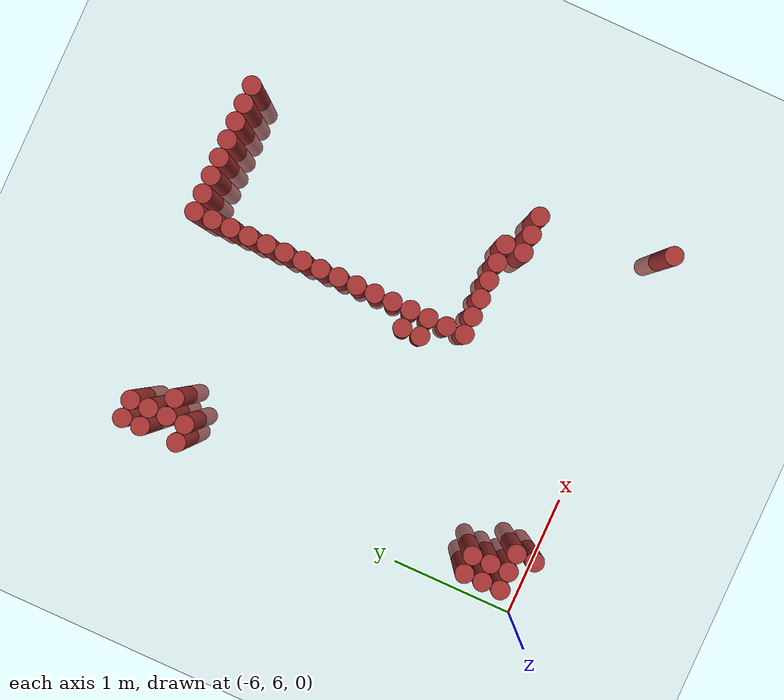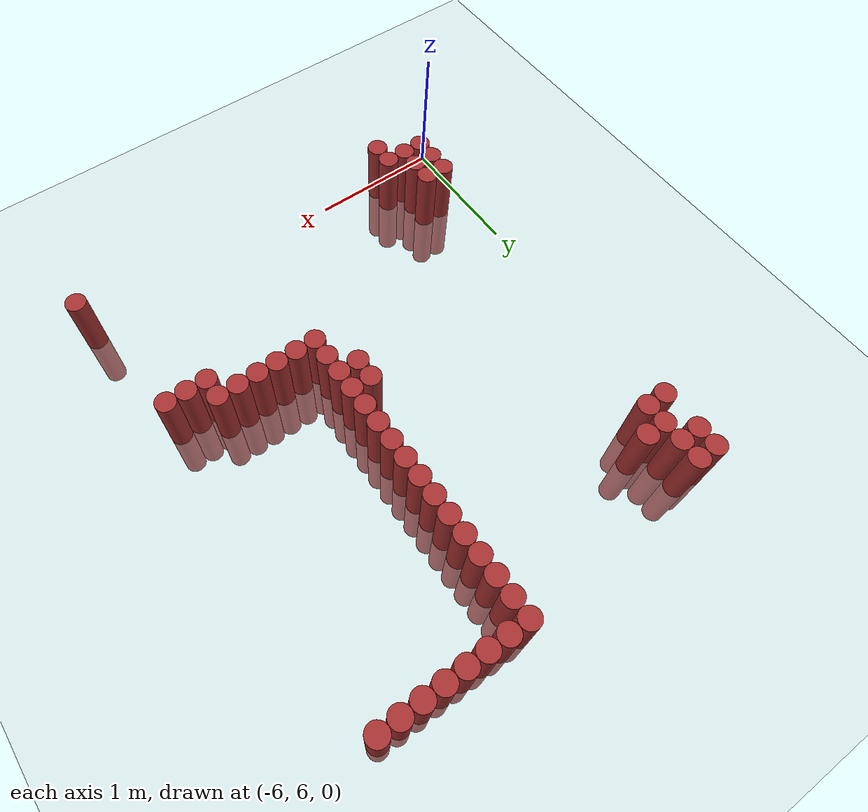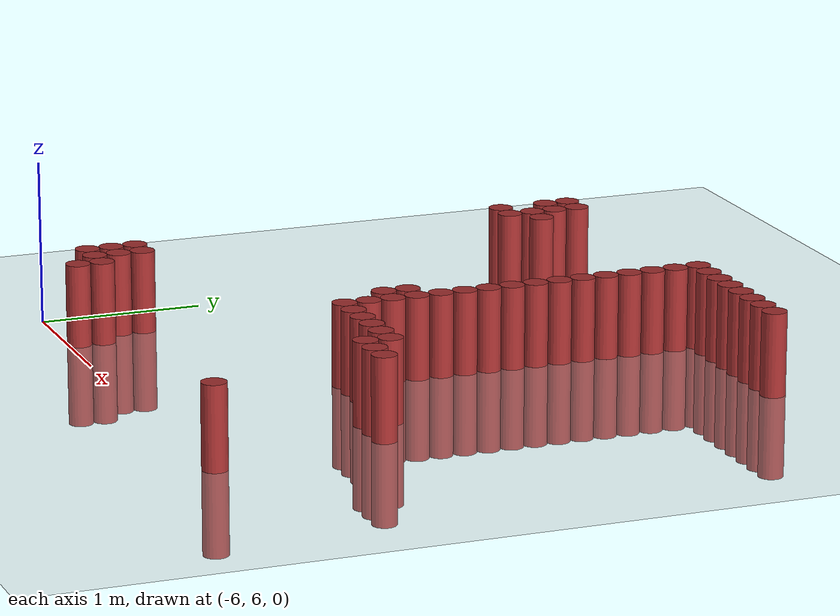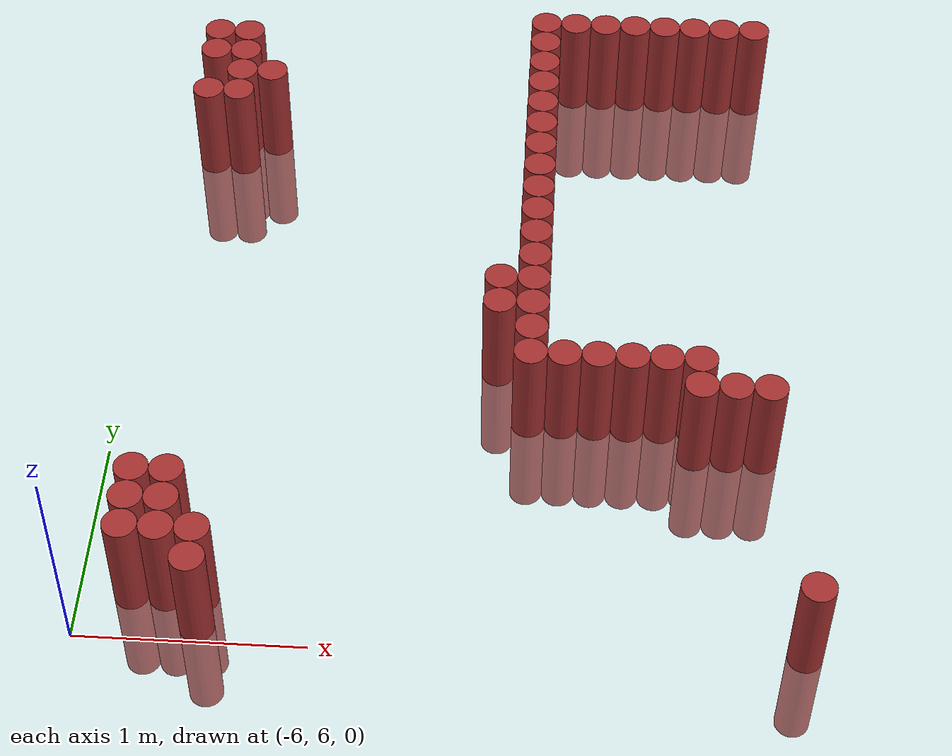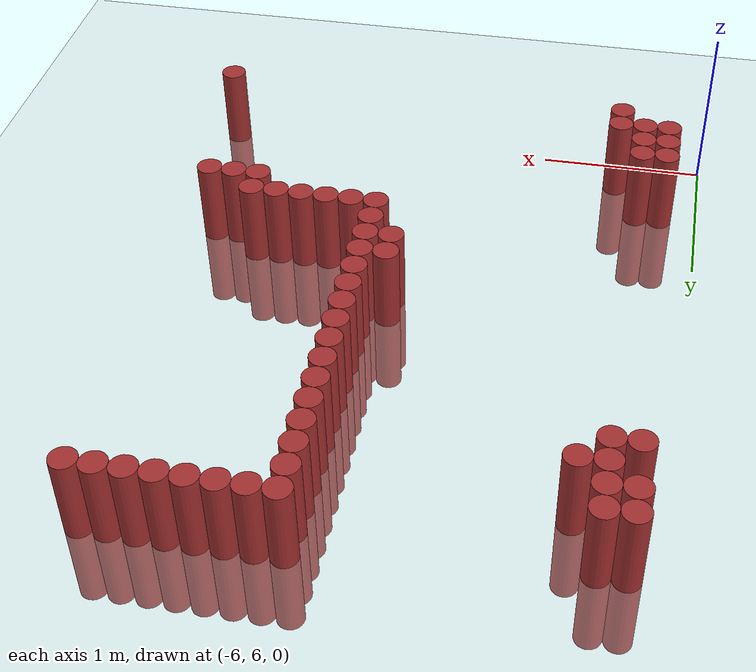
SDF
<sdf version="1.6">
 <world name="default">
  <model name="ground_plane">
   <static>1</static>
   <link name="link">
    <collision name="collision">
     <geometry><plane><normal>0 0 1</normal><size>100 100</size></plane></geometry>
     <surface><friction><ode><mu>100</mu><mu2>50</mu2></ode></friction></surface>
    </collision>
    <visual name="visual">
     <cast_shadows>0</cast_shadows>
     <geometry><plane><normal>0 0 1</normal><size>100 100</size></plane></geometry>
     <material>
      <script><uri>file://media/materials/scripts/gazebo.material</uri><name>Gazebo/Grey</name></script>
     </material>
    </visual>
   </link>
  </model>
  <model name="unit_cylinder_252">
   <static>1</static>
   <pose>-5.775000 6.225000 0.000000 0.000000 0.000000 0.000000</pose>
   <link name="link">
    <inertial>
     <mass>1</mass>
     <inertia><ixx>0.145833</ixx><ixy>0</ixy><ixz>0</ixz><iyy>0.145833</iyy><iyz>0</iyz><izz>0.125</izz></inertia>
    </inertial>
    <collision name="collision">
     <geometry><cylinder><radius>0.075000</radius><length>1</length></cylinder></geometry>
    </collision>
    <visual name="visual">
     <geometry><cylinder><radius>0.075000</radius><length>1</length></cylinder></geometry>
     <material>
      <ambient>0.648000 0.192000 0.192000 1</ambient>
      <diffuse>0.648000 0.192000 0.192000 1</diffuse>
     </material>
     <material>
      <script><name>Gazebo/Grey</name><uri>file://media/materials/scripts/gazebo.material</uri></script>
     </material>
    </visual>
   </link>
  </model>
  <model name="unit_cylinder_253">
   <static>1</static>
   <pose>-5.775000 6.375000 0.000000 0.000000 0.000000 0.000000</pose>
   <link name="link">
    <inertial>
     <mass>1</mass>
     <inertia><ixx>0.145833</ixx><ixy>0</ixy><ixz>0</ixz><iyy>0.145833</iyy><iyz>0</iyz><izz>0.125</izz></inertia>
    </inertial>
    <collision name="collision">
     <geometry><cylinder><radius>0.075000</radius><length>1</length></cylinder></geometry>
    </collision>
    <visual name="visual">
     <geometry><cylinder><radius>0.075000</radius><length>1</length></cylinder></geometry>
     <material>
      <ambient>0.648000 0.192000 0.192000 1</ambient>
      <diffuse>0.648000 0.192000 0.192000 1</diffuse>
     </material>
     <material>
      <script><name>Gazebo/Grey</name><uri>file://media/materials/scripts/gazebo.material</uri></script>
     </material>
    </visual>
   </link>
  </model>
  <model name="unit_cylinder_254">
   <static>1</static>
   <pose>-5.775000 6.525000 0.000000 0.000000 0.000000 0.000000</pose>
   <link name="link">
    <inertial>
     <mass>1</mass>
     <inertia><ixx>0.145833</ixx><ixy>0</ixy><ixz>0</ixz><iyy>0.145833</iyy><iyz>0</iyz><izz>0.125</izz></inertia>
    </inertial>
    <collision name="collision">
     <geometry><cylinder><radius>0.075000</radius><length>1</length></cylinder></geometry>
    </collision>
    <visual name="visual">
     <geometry><cylinder><radius>0.075000</radius><length>1</length></cylinder></geometry>
     <material>
      <ambient>0.648000 0.192000 0.192000 1</ambient>
      <diffuse>0.648000 0.192000 0.192000 1</diffuse>
     </material>
     <material>
      <script><name>Gazebo/Grey</name><uri>file://media/materials/scripts/gazebo.material</uri></script>
     </material>
    </visual>
   </link>
  </model>
  <model name="unit_cylinder_255">
   <static>1</static>
   <pose>-5.775000 8.925000 0.000000 0.000000 0.000000 0.000000</pose>
   <link name="link">
    <inertial>
     <mass>1</mass>
     <inertia><ixx>0.145833</ixx><ixy>0</ixy><ixz>0</ixz><iyy>0.145833</iyy><iyz>0</iyz><izz>0.125</izz></inertia>
    </inertial>
    <collision name="collision">
     <geometry><cylinder><radius>0.075000</radius><length>1</length></cylinder></geometry>
    </collision>
    <visual name="visual">
     <geometry><cylinder><radius>0.075000</radius><length>1</length></cylinder></geometry>
     <material>
      <ambient>0.648000 0.192000 0.192000 1</ambient>
      <diffuse>0.648000 0.192000 0.192000 1</diffuse>
     </material>
     <material>
      <script><name>Gazebo/Grey</name><uri>file://media/materials/scripts/gazebo.material</uri></script>
     </material>
    </visual>
   </link>
  </model>
  <model name="unit_cylinder_256">
   <static>1</static>
   <pose>-5.775000 9.225000 0.000000 0.000000 0.000000 0.000000</pose>
   <link name="link">
    <inertial>
     <mass>1</mass>
     <inertia><ixx>0.145833</ixx><ixy>0</ixy><ixz>0</ixz><iyy>0.145833</iyy><iyz>0</iyz><izz>0.125</izz></inertia>
    </inertial>
    <collision name="collision">
     <geometry><cylinder><radius>0.075000</radius><length>1</length></cylinder></geometry>
    </collision>
    <visual name="visual">
     <geometry><cylinder><radius>0.075000</radius><length>1</length></cylinder></geometry>
     <material>
      <ambient>0.648000 0.192000 0.192000 1</ambient>
      <diffuse>0.648000 0.192000 0.192000 1</diffuse>
     </material>
     <material>
      <script><name>Gazebo/Grey</name><uri>file://media/materials/scripts/gazebo.material</uri></script>
     </material>
    </visual>
   </link>
  </model>
  <model name="unit_cylinder_257">
   <static>1</static>
   <pose>-5.775000 9.375000 0.000000 0.000000 0.000000 0.000000</pose>
   <link name="link">
    <inertial>
     <mass>1</mass>
     <inertia><ixx>0.145833</ixx><ixy>0</ixy><ixz>0</ixz><iyy>0.145833</iyy><iyz>0</iyz><izz>0.125</izz></inertia>
    </inertial>
    <collision name="collision">
     <geometry><cylinder><radius>0.075000</radius><length>1</length></cylinder></geometry>
    </collision>
    <visual name="visual">
     <geometry><cylinder><radius>0.075000</radius><length>1</length></cylinder></geometry>
     <material>
      <ambient>0.648000 0.192000 0.192000 1</ambient>
      <diffuse>0.648000 0.192000 0.192000 1</diffuse>
     </material>
     <material>
      <script><name>Gazebo/Grey</name><uri>file://media/materials/scripts/gazebo.material</uri></script>
     </material>
    </visual>
   </link>
  </model>
  <model name="unit_cylinder_260">
   <static>1</static>
   <pose>-5.625000 6.225000 0.000000 0.000000 0.000000 0.000000</pose>
   <link name="link">
    <inertial>
     <mass>1</mass>
     <inertia><ixx>0.145833</ixx><ixy>0</ixy><ixz>0</ixz><iyy>0.145833</iyy><iyz>0</iyz><izz>0.125</izz></inertia>
    </inertial>
    <collision name="collision">
     <geometry><cylinder><radius>0.075000</radius><length>1</length></cylinder></geometry>
    </collision>
    <visual name="visual">
     <geometry><cylinder><radius>0.075000</radius><length>1</length></cylinder></geometry>
     <material>
      <ambient>0.648000 0.192000 0.192000 1</ambient>
      <diffuse>0.648000 0.192000 0.192000 1</diffuse>
     </material>
     <material>
      <script><name>Gazebo/Grey</name><uri>file://media/materials/scripts/gazebo.material</uri></script>
     </material>
    </visual>
   </link>
  </model>
  <model name="unit_cylinder_261">
   <static>1</static>
   <pose>-5.625000 6.375000 0.000000 0.000000 0.000000 0.000000</pose>
   <link name="link">
    <inertial>
     <mass>1</mass>
     <inertia><ixx>0.145833</ixx><ixy>0</ixy><ixz>0</ixz><iyy>0.145833</iyy><iyz>0</iyz><izz>0.125</izz></inertia>
    </inertial>
    <collision name="collision">
     <geometry><cylinder><radius>0.075000</radius><length>1</length></cylinder></geometry>
    </collision>
    <visual name="visual">
     <geometry><cylinder><radius>0.075000</radius><length>1</length></cylinder></geometry>
     <material>
      <ambient>0.648000 0.192000 0.192000 1</ambient>
      <diffuse>0.648000 0.192000 0.192000 1</diffuse>
     </material>
     <material>
      <script><name>Gazebo/Grey</name><uri>file://media/materials/scripts/gazebo.material</uri></script>
     </material>
    </visual>
   </link>
  </model>
  <model name="unit_cylinder_262">
   <static>1</static>
   <pose>-5.625000 6.525000 0.000000 0.000000 0.000000 0.000000</pose>
   <link name="link">
    <inertial>
     <mass>1</mass>
     <inertia><ixx>0.145833</ixx><ixy>0</ixy><ixz>0</ixz><iyy>0.145833</iyy><iyz>0</iyz><izz>0.125</izz></inertia>
    </inertial>
    <collision name="collision">
     <geometry><cylinder><radius>0.075000</radius><length>1</length></cylinder></geometry>
    </collision>
    <visual name="visual">
     <geometry><cylinder><radius>0.075000</radius><length>1</length></cylinder></geometry>
     <material>
      <ambient>0.648000 0.192000 0.192000 1</ambient>
      <diffuse>0.648000 0.192000 0.192000 1</diffuse>
     </material>
     <material>
      <script><name>Gazebo/Grey</name><uri>file://media/materials/scripts/gazebo.material</uri></script>
     </material>
    </visual>
   </link>
  </model>
  <model name="unit_cylinder_263">
   <static>1</static>
   <pose>-5.625000 8.925000 0.000000 0.000000 0.000000 0.000000</pose>
   <link name="link">
    <inertial>
     <mass>1</mass>
     <inertia><ixx>0.145833</ixx><ixy>0</ixy><ixz>0</ixz><iyy>0.145833</iyy><iyz>0</iyz><izz>0.125</izz></inertia>
    </inertial>
    <collision name="collision">
     <geometry><cylinder><radius>0.075000</radius><length>1</length></cylinder></geometry>
    </collision>
    <visual name="visual">
     <geometry><cylinder><radius>0.075000</radius><length>1</length></cylinder></geometry>
     <material>
      <ambient>0.648000 0.192000 0.192000 1</ambient>
      <diffuse>0.648000 0.192000 0.192000 1</diffuse>
     </material>
     <material>
      <script><name>Gazebo/Grey</name><uri>file://media/materials/scripts/gazebo.material</uri></script>
     </material>
    </visual>
   </link>
  </model>
  <model name="unit_cylinder_264">
   <static>1</static>
   <pose>-5.625000 9.075000 0.000000 0.000000 0.000000 0.000000</pose>
   <link name="link">
    <inertial>
     <mass>1</mass>
     <inertia><ixx>0.145833</ixx><ixy>0</ixy><ixz>0</ixz><iyy>0.145833</iyy><iyz>0</iyz><izz>0.125</izz></inertia>
    </inertial>
    <collision name="collision">
     <geometry><cylinder><radius>0.075000</radius><length>1</length></cylinder></geometry>
    </collision>
    <visual name="visual">
     <geometry><cylinder><radius>0.075000</radius><length>1</length></cylinder></geometry>
     <material>
      <ambient>0.648000 0.192000 0.192000 1</ambient>
      <diffuse>0.648000 0.192000 0.192000 1</diffuse>
     </material>
     <material>
      <script><name>Gazebo/Grey</name><uri>file://media/materials/scripts/gazebo.material</uri></script>
     </material>
    </visual>
   </link>
  </model>
  <model name="unit_cylinder_265">
   <static>1</static>
   <pose>-5.625000 9.225000 0.000000 0.000000 0.000000 0.000000</pose>
   <link name="link">
    <inertial>
     <mass>1</mass>
     <inertia><ixx>0.145833</ixx><ixy>0</ixy><ixz>0</ixz><iyy>0.145833</iyy><iyz>0</iyz><izz>0.125</izz></inertia>
    </inertial>
    <collision name="collision">
     <geometry><cylinder><radius>0.075000</radius><length>1</length></cylinder></geometry>
    </collision>
    <visual name="visual">
     <geometry><cylinder><radius>0.075000</radius><length>1</length></cylinder></geometry>
     <material>
      <ambient>0.648000 0.192000 0.192000 1</ambient>
      <diffuse>0.648000 0.192000 0.192000 1</diffuse>
     </material>
     <material>
      <script><name>Gazebo/Grey</name><uri>file://media/materials/scripts/gazebo.material</uri></script>
     </material>
    </visual>
   </link>
  </model>
  <model name="unit_cylinder_266">
   <static>1</static>
   <pose>-5.625000 9.375000 0.000000 0.000000 0.000000 0.000000</pose>
   <link name="link">
    <inertial>
     <mass>1</mass>
     <inertia><ixx>0.145833</ixx><ixy>0</ixy><ixz>0</ixz><iyy>0.145833</iyy><iyz>0</iyz><izz>0.125</izz></inertia>
    </inertial>
    <collision name="collision">
     <geometry><cylinder><radius>0.075000</radius><length>1</length></cylinder></geometry>
    </collision>
    <visual name="visual">
     <geometry><cylinder><radius>0.075000</radius><length>1</length></cylinder></geometry>
     <material>
      <ambient>0.648000 0.192000 0.192000 1</ambient>
      <diffuse>0.648000 0.192000 0.192000 1</diffuse>
     </material>
     <material>
      <script><name>Gazebo/Grey</name><uri>file://media/materials/scripts/gazebo.material</uri></script>
     </material>
    </visual>
   </link>
  </model>
  <model name="unit_cylinder_268">
   <static>1</static>
   <pose>-5.475000 6.075000 0.000000 0.000000 0.000000 0.000000</pose>
   <link name="link">
    <inertial>
     <mass>1</mass>
     <inertia><ixx>0.145833</ixx><ixy>0</ixy><ixz>0</ixz><iyy>0.145833</iyy><iyz>0</iyz><izz>0.125</izz></inertia>
    </inertial>
    <collision name="collision">
     <geometry><cylinder><radius>0.075000</radius><length>1</length></cylinder></geometry>
    </collision>
    <visual name="visual">
     <geometry><cylinder><radius>0.075000</radius><length>1</length></cylinder></geometry>
     <material>
      <ambient>0.648000 0.192000 0.192000 1</ambient>
      <diffuse>0.648000 0.192000 0.192000 1</diffuse>
     </material>
     <material>
      <script><name>Gazebo/Grey</name><uri>file://media/materials/scripts/gazebo.material</uri></script>
     </material>
    </visual>
   </link>
  </model>
  <model name="unit_cylinder_269">
   <static>1</static>
   <pose>-5.475000 6.225000 0.000000 0.000000 0.000000 0.000000</pose>
   <link name="link">
    <inertial>
     <mass>1</mass>
     <inertia><ixx>0.145833</ixx><ixy>0</ixy><ixz>0</ixz><iyy>0.145833</iyy><iyz>0</iyz><izz>0.125</izz></inertia>
    </inertial>
    <collision name="collision">
     <geometry><cylinder><radius>0.075000</radius><length>1</length></cylinder></geometry>
    </collision>
    <visual name="visual">
     <geometry><cylinder><radius>0.075000</radius><length>1</length></cylinder></geometry>
     <material>
      <ambient>0.648000 0.192000 0.192000 1</ambient>
      <diffuse>0.648000 0.192000 0.192000 1</diffuse>
     </material>
     <material>
      <script><name>Gazebo/Grey</name><uri>file://media/materials/scripts/gazebo.material</uri></script>
     </material>
    </visual>
   </link>
  </model>
  <model name="unit_cylinder_270">
   <static>1</static>
   <pose>-5.475000 9.075000 0.000000 0.000000 0.000000 0.000000</pose>
   <link name="link">
    <inertial>
     <mass>1</mass>
     <inertia><ixx>0.145833</ixx><ixy>0</ixy><ixz>0</ixz><iyy>0.145833</iyy><iyz>0</iyz><izz>0.125</izz></inertia>
    </inertial>
    <collision name="collision">
     <geometry><cylinder><radius>0.075000</radius><length>1</length></cylinder></geometry>
    </collision>
    <visual name="visual">
     <geometry><cylinder><radius>0.075000</radius><length>1</length></cylinder></geometry>
     <material>
      <ambient>0.648000 0.192000 0.192000 1</ambient>
      <diffuse>0.648000 0.192000 0.192000 1</diffuse>
     </material>
     <material>
      <script><name>Gazebo/Grey</name><uri>file://media/materials/scripts/gazebo.material</uri></script>
     </material>
    </visual>
   </link>
  </model>
  <model name="unit_cylinder_285">
   <static>1</static>
   <pose>-4.275000 7.575000 0.000000 0.000000 0.000000 0.000000</pose>
   <link name="link">
    <inertial>
     <mass>1</mass>
     <inertia><ixx>0.145833</ixx><ixy>0</ixy><ixz>0</ixz><iyy>0.145833</iyy><iyz>0</iyz><izz>0.125</izz></inertia>
    </inertial>
    <collision name="collision">
     <geometry><cylinder><radius>0.075000</radius><length>1</length></cylinder></geometry>
    </collision>
    <visual name="visual">
     <geometry><cylinder><radius>0.075000</radius><length>1</length></cylinder></geometry>
     <material>
      <ambient>0.648000 0.192000 0.192000 1</ambient>
      <diffuse>0.648000 0.192000 0.192000 1</diffuse>
     </material>
     <material>
      <script><name>Gazebo/Grey</name><uri>file://media/materials/scripts/gazebo.material</uri></script>
     </material>
    </visual>
   </link>
  </model>
  <model name="unit_cylinder_286">
   <static>1</static>
   <pose>-4.275000 7.725000 0.000000 0.000000 0.000000 0.000000</pose>
   <link name="link">
    <inertial>
     <mass>1</mass>
     <inertia><ixx>0.145833</ixx><ixy>0</ixy><ixz>0</ixz><iyy>0.145833</iyy><iyz>0</iyz><izz>0.125</izz></inertia>
    </inertial>
    <collision name="collision">
     <geometry><cylinder><radius>0.075000</radius><length>1</length></cylinder></geometry>
    </collision>
    <visual name="visual">
     <geometry><cylinder><radius>0.075000</radius><length>1</length></cylinder></geometry>
     <material>
      <ambient>0.648000 0.192000 0.192000 1</ambient>
      <diffuse>0.648000 0.192000 0.192000 1</diffuse>
     </material>
     <material>
      <script><name>Gazebo/Grey</name><uri>file://media/materials/scripts/gazebo.material</uri></script>
     </material>
    </visual>
   </link>
  </model>
  <model name="unit_cylinder_287">
   <static>1</static>
   <pose>-4.125000 7.275000 0.000000 0.000000 0.000000 0.000000</pose>
   <link name="link">
    <inertial>
     <mass>1</mass>
     <inertia><ixx>0.145833</ixx><ixy>0</ixy><ixz>0</ixz><iyy>0.145833</iyy><iyz>0</iyz><izz>0.125</izz></inertia>
    </inertial>
    <collision name="collision">
     <geometry><cylinder><radius>0.075000</radius><length>1</length></cylinder></geometry>
    </collision>
    <visual name="visual">
     <geometry><cylinder><radius>0.075000</radius><length>1</length></cylinder></geometry>
     <material>
      <ambient>0.648000 0.192000 0.192000 1</ambient>
      <diffuse>0.648000 0.192000 0.192000 1</diffuse>
     </material>
     <material>
      <script><name>Gazebo/Grey</name><uri>file://media/materials/scripts/gazebo.material</uri></script>
     </material>
    </visual>
   </link>
  </model>
  <model name="unit_cylinder_288">
   <static>1</static>
   <pose>-4.125000 7.425000 0.000000 0.000000 0.000000 0.000000</pose>
   <link name="link">
    <inertial>
     <mass>1</mass>
     <inertia><ixx>0.145833</ixx><ixy>0</ixy><ixz>0</ixz><iyy>0.145833</iyy><iyz>0</iyz><izz>0.125</izz></inertia>
    </inertial>
    <collision name="collision">
     <geometry><cylinder><radius>0.075000</radius><length>1</length></cylinder></geometry>
    </collision>
    <visual name="visual">
     <geometry><cylinder><radius>0.075000</radius><length>1</length></cylinder></geometry>
     <material>
      <ambient>0.648000 0.192000 0.192000 1</ambient>
      <diffuse>0.648000 0.192000 0.192000 1</diffuse>
     </material>
     <material>
      <script><name>Gazebo/Grey</name><uri>file://media/materials/scripts/gazebo.material</uri></script>
     </material>
    </visual>
   </link>
  </model>
  <model name="unit_cylinder_289">
   <static>1</static>
   <pose>-4.125000 7.575000 0.000000 0.000000 0.000000 0.000000</pose>
   <link name="link">
    <inertial>
     <mass>1</mass>
     <inertia><ixx>0.145833</ixx><ixy>0</ixy><ixz>0</ixz><iyy>0.145833</iyy><iyz>0</iyz><izz>0.125</izz></inertia>
    </inertial>
    <collision name="collision">
     <geometry><cylinder><radius>0.075000</radius><length>1</length></cylinder></geometry>
    </collision>
    <visual name="visual">
     <geometry><cylinder><radius>0.075000</radius><length>1</length></cylinder></geometry>
     <material>
      <ambient>0.648000 0.192000 0.192000 1</ambient>
      <diffuse>0.648000 0.192000 0.192000 1</diffuse>
     </material>
     <material>
      <script><name>Gazebo/Grey</name><uri>file://media/materials/scripts/gazebo.material</uri></script>
     </material>
    </visual>
   </link>
  </model>
  <model name="unit_cylinder_290">
   <static>1</static>
   <pose>-4.125000 7.725000 0.000000 0.000000 0.000000 0.000000</pose>
   <link name="link">
    <inertial>
     <mass>1</mass>
     <inertia><ixx>0.145833</ixx><ixy>0</ixy><ixz>0</ixz><iyy>0.145833</iyy><iyz>0</iyz><izz>0.125</izz></inertia>
    </inertial>
    <collision name="collision">
     <geometry><cylinder><radius>0.075000</radius><length>1</length></cylinder></geometry>
    </collision>
    <visual name="visual">
     <geometry><cylinder><radius>0.075000</radius><length>1</length></cylinder></geometry>
     <material>
      <ambient>0.648000 0.192000 0.192000 1</ambient>
      <diffuse>0.648000 0.192000 0.192000 1</diffuse>
     </material>
     <material>
      <script><name>Gazebo/Grey</name><uri>file://media/materials/scripts/gazebo.material</uri></script>
     </material>
    </visual>
   </link>
  </model>
  <model name="unit_cylinder_291">
   <static>1</static>
   <pose>-4.125000 7.875000 0.000000 0.000000 0.000000 0.000000</pose>
   <link name="link">
    <inertial>
     <mass>1</mass>
     <inertia><ixx>0.145833</ixx><ixy>0</ixy><ixz>0</ixz><iyy>0.145833</iyy><iyz>0</iyz><izz>0.125</izz></inertia>
    </inertial>
    <collision name="collision">
     <geometry><cylinder><radius>0.075000</radius><length>1</length></cylinder></geometry>
    </collision>
    <visual name="visual">
     <geometry><cylinder><radius>0.075000</radius><length>1</length></cylinder></geometry>
     <material>
      <ambient>0.648000 0.192000 0.192000 1</ambient>
      <diffuse>0.648000 0.192000 0.192000 1</diffuse>
     </material>
     <material>
      <script><name>Gazebo/Grey</name><uri>file://media/materials/scripts/gazebo.material</uri></script>
     </material>
    </visual>
   </link>
  </model>
  <model name="unit_cylinder_292">
   <static>1</static>
   <pose>-4.125000 8.025000 0.000000 0.000000 0.000000 0.000000</pose>
   <link name="link">
    <inertial>
     <mass>1</mass>
     <inertia><ixx>0.145833</ixx><ixy>0</ixy><ixz>0</ixz><iyy>0.145833</iyy><iyz>0</iyz><izz>0.125</izz></inertia>
    </inertial>
    <collision name="collision">
     <geometry><cylinder><radius>0.075000</radius><length>1</length></cylinder></geometry>
    </collision>
    <visual name="visual">
     <geometry><cylinder><radius>0.075000</radius><length>1</length></cylinder></geometry>
     <material>
      <ambient>0.648000 0.192000 0.192000 1</ambient>
      <diffuse>0.648000 0.192000 0.192000 1</diffuse>
     </material>
     <material>
      <script><name>Gazebo/Grey</name><uri>file://media/materials/scripts/gazebo.material</uri></script>
     </material>
    </visual>
   </link>
  </model>
  <model name="unit_cylinder_293">
   <static>1</static>
   <pose>-4.125000 8.175000 0.000000 0.000000 0.000000 0.000000</pose>
   <link name="link">
    <inertial>
     <mass>1</mass>
     <inertia><ixx>0.145833</ixx><ixy>0</ixy><ixz>0</ixz><iyy>0.145833</iyy><iyz>0</iyz><izz>0.125</izz></inertia>
    </inertial>
    <collision name="collision">
     <geometry><cylinder><radius>0.075000</radius><length>1</length></cylinder></geometry>
    </collision>
    <visual name="visual">
     <geometry><cylinder><radius>0.075000</radius><length>1</length></cylinder></geometry>
     <material>
      <ambient>0.648000 0.192000 0.192000 1</ambient>
      <diffuse>0.648000 0.192000 0.192000 1</diffuse>
     </material>
     <material>
      <script><name>Gazebo/Grey</name><uri>file://media/materials/scripts/gazebo.material</uri></script>
     </material>
    </visual>
   </link>
  </model>
  <model name="unit_cylinder_294">
   <static>1</static>
   <pose>-4.125000 8.325000 0.000000 0.000000 0.000000 0.000000</pose>
   <link name="link">
    <inertial>
     <mass>1</mass>
     <inertia><ixx>0.145833</ixx><ixy>0</ixy><ixz>0</ixz><iyy>0.145833</iyy><iyz>0</iyz><izz>0.125</izz></inertia>
    </inertial>
    <collision name="collision">
     <geometry><cylinder><radius>0.075000</radius><length>1</length></cylinder></geometry>
    </collision>
    <visual name="visual">
     <geometry><cylinder><radius>0.075000</radius><length>1</length></cylinder></geometry>
     <material>
      <ambient>0.648000 0.192000 0.192000 1</ambient>
      <diffuse>0.648000 0.192000 0.192000 1</diffuse>
     </material>
     <material>
      <script><name>Gazebo/Grey</name><uri>file://media/materials/scripts/gazebo.material</uri></script>
     </material>
    </visual>
   </link>
  </model>
  <model name="unit_cylinder_295">
   <static>1</static>
   <pose>-4.125000 8.475000 0.000000 0.000000 0.000000 0.000000</pose>
   <link name="link">
    <inertial>
     <mass>1</mass>
     <inertia><ixx>0.145833</ixx><ixy>0</ixy><ixz>0</ixz><iyy>0.145833</iyy><iyz>0</iyz><izz>0.125</izz></inertia>
    </inertial>
    <collision name="collision">
     <geometry><cylinder><radius>0.075000</radius><length>1</length></cylinder></geometry>
    </collision>
    <visual name="visual">
     <geometry><cylinder><radius>0.075000</radius><length>1</length></cylinder></geometry>
     <material>
      <ambient>0.648000 0.192000 0.192000 1</ambient>
      <diffuse>0.648000 0.192000 0.192000 1</diffuse>
     </material>
     <material>
      <script><name>Gazebo/Grey</name><uri>file://media/materials/scripts/gazebo.material</uri></script>
     </material>
    </visual>
   </link>
  </model>
  <model name="unit_cylinder_296">
   <static>1</static>
   <pose>-4.125000 8.625000 0.000000 0.000000 0.000000 0.000000</pose>
   <link name="link">
    <inertial>
     <mass>1</mass>
     <inertia><ixx>0.145833</ixx><ixy>0</ixy><ixz>0</ixz><iyy>0.145833</iyy><iyz>0</iyz><izz>0.125</izz></inertia>
    </inertial>
    <collision name="collision">
     <geometry><cylinder><radius>0.075000</radius><length>1</length></cylinder></geometry>
    </collision>
    <visual name="visual">
     <geometry><cylinder><radius>0.075000</radius><length>1</length></cylinder></geometry>
     <material>
      <ambient>0.648000 0.192000 0.192000 1</ambient>
      <diffuse>0.648000 0.192000 0.192000 1</diffuse>
     </material>
     <material>
      <script><name>Gazebo/Grey</name><uri>file://media/materials/scripts/gazebo.material</uri></script>
     </material>
    </visual>
   </link>
  </model>
  <model name="unit_cylinder_297">
   <static>1</static>
   <pose>-4.125000 8.775000 0.000000 0.000000 0.000000 0.000000</pose>
   <link name="link">
    <inertial>
     <mass>1</mass>
     <inertia><ixx>0.145833</ixx><ixy>0</ixy><ixz>0</ixz><iyy>0.145833</iyy><iyz>0</iyz><izz>0.125</izz></inertia>
    </inertial>
    <collision name="collision">
     <geometry><cylinder><radius>0.075000</radius><length>1</length></cylinder></geometry>
    </collision>
    <visual name="visual">
     <geometry><cylinder><radius>0.075000</radius><length>1</length></cylinder></geometry>
     <material>
      <ambient>0.648000 0.192000 0.192000 1</ambient>
      <diffuse>0.648000 0.192000 0.192000 1</diffuse>
     </material>
     <material>
      <script><name>Gazebo/Grey</name><uri>file://media/materials/scripts/gazebo.material</uri></script>
     </material>
    </visual>
   </link>
  </model>
  <model name="unit_cylinder_298">
   <static>1</static>
   <pose>-4.125000 8.925000 0.000000 0.000000 0.000000 0.000000</pose>
   <link name="link">
    <inertial>
     <mass>1</mass>
     <inertia><ixx>0.145833</ixx><ixy>0</ixy><ixz>0</ixz><iyy>0.145833</iyy><iyz>0</iyz><izz>0.125</izz></inertia>
    </inertial>
    <collision name="collision">
     <geometry><cylinder><radius>0.075000</radius><length>1</length></cylinder></geometry>
    </collision>
    <visual name="visual">
     <geometry><cylinder><radius>0.075000</radius><length>1</length></cylinder></geometry>
     <material>
      <ambient>0.648000 0.192000 0.192000 1</ambient>
      <diffuse>0.648000 0.192000 0.192000 1</diffuse>
     </material>
     <material>
      <script><name>Gazebo/Grey</name><uri>file://media/materials/scripts/gazebo.material</uri></script>
     </material>
    </visual>
   </link>
  </model>
  <model name="unit_cylinder_299">
   <static>1</static>
   <pose>-4.125000 9.075000 0.000000 0.000000 0.000000 0.000000</pose>
   <link name="link">
    <inertial>
     <mass>1</mass>
     <inertia><ixx>0.145833</ixx><ixy>0</ixy><ixz>0</ixz><iyy>0.145833</iyy><iyz>0</iyz><izz>0.125</izz></inertia>
    </inertial>
    <collision name="collision">
     <geometry><cylinder><radius>0.075000</radius><length>1</length></cylinder></geometry>
    </collision>
    <visual name="visual">
     <geometry><cylinder><radius>0.075000</radius><length>1</length></cylinder></geometry>
     <material>
      <ambient>0.648000 0.192000 0.192000 1</ambient>
      <diffuse>0.648000 0.192000 0.192000 1</diffuse>
     </material>
     <material>
      <script><name>Gazebo/Grey</name><uri>file://media/materials/scripts/gazebo.material</uri></script>
     </material>
    </visual>
   </link>
  </model>
  <model name="unit_cylinder_300">
   <static>1</static>
   <pose>-4.125000 9.225000 0.000000 0.000000 0.000000 0.000000</pose>
   <link name="link">
    <inertial>
     <mass>1</mass>
     <inertia><ixx>0.145833</ixx><ixy>0</ixy><ixz>0</ixz><iyy>0.145833</iyy><iyz>0</iyz><izz>0.125</izz></inertia>
    </inertial>
    <collision name="collision">
     <geometry><cylinder><radius>0.075000</radius><length>1</length></cylinder></geometry>
    </collision>
    <visual name="visual">
     <geometry><cylinder><radius>0.075000</radius><length>1</length></cylinder></geometry>
     <material>
      <ambient>0.648000 0.192000 0.192000 1</ambient>
      <diffuse>0.648000 0.192000 0.192000 1</diffuse>
     </material>
     <material>
      <script><name>Gazebo/Grey</name><uri>file://media/materials/scripts/gazebo.material</uri></script>
     </material>
    </visual>
   </link>
  </model>
  <model name="unit_cylinder_301">
   <static>1</static>
   <pose>-4.125000 9.375000 0.000000 0.000000 0.000000 0.000000</pose>
   <link name="link">
    <inertial>
     <mass>1</mass>
     <inertia><ixx>0.145833</ixx><ixy>0</ixy><ixz>0</ixz><iyy>0.145833</iyy><iyz>0</iyz><izz>0.125</izz></inertia>
    </inertial>
    <collision name="collision">
     <geometry><cylinder><radius>0.075000</radius><length>1</length></cylinder></geometry>
    </collision>
    <visual name="visual">
     <geometry><cylinder><radius>0.075000</radius><length>1</length></cylinder></geometry>
     <material>
      <ambient>0.648000 0.192000 0.192000 1</ambient>
      <diffuse>0.648000 0.192000 0.192000 1</diffuse>
     </material>
     <material>
      <script><name>Gazebo/Grey</name><uri>file://media/materials/scripts/gazebo.material</uri></script>
     </material>
    </visual>
   </link>
  </model>
  <model name="unit_cylinder_302">
   <static>1</static>
   <pose>-4.125000 9.525000 0.000000 0.000000 0.000000 0.000000</pose>
   <link name="link">
    <inertial>
     <mass>1</mass>
     <inertia><ixx>0.145833</ixx><ixy>0</ixy><ixz>0</ixz><iyy>0.145833</iyy><iyz>0</iyz><izz>0.125</izz></inertia>
    </inertial>
    <collision name="collision">
     <geometry><cylinder><radius>0.075000</radius><length>1</length></cylinder></geometry>
    </collision>
    <visual name="visual">
     <geometry><cylinder><radius>0.075000</radius><length>1</length></cylinder></geometry>
     <material>
      <ambient>0.648000 0.192000 0.192000 1</ambient>
      <diffuse>0.648000 0.192000 0.192000 1</diffuse>
     </material>
     <material>
      <script><name>Gazebo/Grey</name><uri>file://media/materials/scripts/gazebo.material</uri></script>
     </material>
    </visual>
   </link>
  </model>
  <model name="unit_cylinder_303">
   <static>1</static>
   <pose>-3.975000 7.275000 0.000000 0.000000 0.000000 0.000000</pose>
   <link name="link">
    <inertial>
     <mass>1</mass>
     <inertia><ixx>0.145833</ixx><ixy>0</ixy><ixz>0</ixz><iyy>0.145833</iyy><iyz>0</iyz><izz>0.125</izz></inertia>
    </inertial>
    <collision name="collision">
     <geometry><cylinder><radius>0.075000</radius><length>1</length></cylinder></geometry>
    </collision>
    <visual name="visual">
     <geometry><cylinder><radius>0.075000</radius><length>1</length></cylinder></geometry>
     <material>
      <ambient>0.648000 0.192000 0.192000 1</ambient>
      <diffuse>0.648000 0.192000 0.192000 1</diffuse>
     </material>
     <material>
      <script><name>Gazebo/Grey</name><uri>file://media/materials/scripts/gazebo.material</uri></script>
     </material>
    </visual>
   </link>
  </model>
  <model name="unit_cylinder_304">
   <static>1</static>
   <pose>-3.975000 9.525000 0.000000 0.000000 0.000000 0.000000</pose>
   <link name="link">
    <inertial>
     <mass>1</mass>
     <inertia><ixx>0.145833</ixx><ixy>0</ixy><ixz>0</ixz><iyy>0.145833</iyy><iyz>0</iyz><izz>0.125</izz></inertia>
    </inertial>
    <collision name="collision">
     <geometry><cylinder><radius>0.075000</radius><length>1</length></cylinder></geometry>
    </collision>
    <visual name="visual">
     <geometry><cylinder><radius>0.075000</radius><length>1</length></cylinder></geometry>
     <material>
      <ambient>0.648000 0.192000 0.192000 1</ambient>
      <diffuse>0.648000 0.192000 0.192000 1</diffuse>
     </material>
     <material>
      <script><name>Gazebo/Grey</name><uri>file://media/materials/scripts/gazebo.material</uri></script>
     </material>
    </visual>
   </link>
  </model>
  <model name="unit_cylinder_305">
   <static>1</static>
   <pose>-3.825000 7.275000 0.000000 0.000000 0.000000 0.000000</pose>
   <link name="link">
    <inertial>
     <mass>1</mass>
     <inertia><ixx>0.145833</ixx><ixy>0</ixy><ixz>0</ixz><iyy>0.145833</iyy><iyz>0</iyz><izz>0.125</izz></inertia>
    </inertial>
    <collision name="collision">
     <geometry><cylinder><radius>0.075000</radius><length>1</length></cylinder></geometry>
    </collision>
    <visual name="visual">
     <geometry><cylinder><radius>0.075000</radius><length>1</length></cylinder></geometry>
     <material>
      <ambient>0.648000 0.192000 0.192000 1</ambient>
      <diffuse>0.648000 0.192000 0.192000 1</diffuse>
     </material>
     <material>
      <script><name>Gazebo/Grey</name><uri>file://media/materials/scripts/gazebo.material</uri></script>
     </material>
    </visual>
   </link>
  </model>
  <model name="unit_cylinder_306">
   <static>1</static>
   <pose>-3.825000 9.525000 0.000000 0.000000 0.000000 0.000000</pose>
   <link name="link">
    <inertial>
     <mass>1</mass>
     <inertia><ixx>0.145833</ixx><ixy>0</ixy><ixz>0</ixz><iyy>0.145833</iyy><iyz>0</iyz><izz>0.125</izz></inertia>
    </inertial>
    <collision name="collision">
     <geometry><cylinder><radius>0.075000</radius><length>1</length></cylinder></geometry>
    </collision>
    <visual name="visual">
     <geometry><cylinder><radius>0.075000</radius><length>1</length></cylinder></geometry>
     <material>
      <ambient>0.648000 0.192000 0.192000 1</ambient>
      <diffuse>0.648000 0.192000 0.192000 1</diffuse>
     </material>
     <material>
      <script><name>Gazebo/Grey</name><uri>file://media/materials/scripts/gazebo.material</uri></script>
     </material>
    </visual>
   </link>
  </model>
  <model name="unit_cylinder_307">
   <static>1</static>
   <pose>-3.675000 7.275000 0.000000 0.000000 0.000000 0.000000</pose>
   <link name="link">
    <inertial>
     <mass>1</mass>
     <inertia><ixx>0.145833</ixx><ixy>0</ixy><ixz>0</ixz><iyy>0.145833</iyy><iyz>0</iyz><izz>0.125</izz></inertia>
    </inertial>
    <collision name="collision">
     <geometry><cylinder><radius>0.075000</radius><length>1</length></cylinder></geometry>
    </collision>
    <visual name="visual">
     <geometry><cylinder><radius>0.075000</radius><length>1</length></cylinder></geometry>
     <material>
      <ambient>0.648000 0.192000 0.192000 1</ambient>
      <diffuse>0.648000 0.192000 0.192000 1</diffuse>
     </material>
     <material>
      <script><name>Gazebo/Grey</name><uri>file://media/materials/scripts/gazebo.material</uri></script>
     </material>
    </visual>
   </link>
  </model>
  <model name="unit_cylinder_308">
   <static>1</static>
   <pose>-3.675000 9.525000 0.000000 0.000000 0.000000 0.000000</pose>
   <link name="link">
    <inertial>
     <mass>1</mass>
     <inertia><ixx>0.145833</ixx><ixy>0</ixy><ixz>0</ixz><iyy>0.145833</iyy><iyz>0</iyz><izz>0.125</izz></inertia>
    </inertial>
    <collision name="collision">
     <geometry><cylinder><radius>0.075000</radius><length>1</length></cylinder></geometry>
    </collision>
    <visual name="visual">
     <geometry><cylinder><radius>0.075000</radius><length>1</length></cylinder></geometry>
     <material>
      <ambient>0.648000 0.192000 0.192000 1</ambient>
      <diffuse>0.648000 0.192000 0.192000 1</diffuse>
     </material>
     <material>
      <script><name>Gazebo/Grey</name><uri>file://media/materials/scripts/gazebo.material</uri></script>
     </material>
    </visual>
   </link>
  </model>
  <model name="unit_cylinder_309">
   <static>1</static>
   <pose>-3.525000 7.275000 0.000000 0.000000 0.000000 0.000000</pose>
   <link name="link">
    <inertial>
     <mass>1</mass>
     <inertia><ixx>0.145833</ixx><ixy>0</ixy><ixz>0</ixz><iyy>0.145833</iyy><iyz>0</iyz><izz>0.125</izz></inertia>
    </inertial>
    <collision name="collision">
     <geometry><cylinder><radius>0.075000</radius><length>1</length></cylinder></geometry>
    </collision>
    <visual name="visual">
     <geometry><cylinder><radius>0.075000</radius><length>1</length></cylinder></geometry>
     <material>
      <ambient>0.648000 0.192000 0.192000 1</ambient>
      <diffuse>0.648000 0.192000 0.192000 1</diffuse>
     </material>
     <material>
      <script><name>Gazebo/Grey</name><uri>file://media/materials/scripts/gazebo.material</uri></script>
     </material>
    </visual>
   </link>
  </model>
  <model name="unit_cylinder_310">
   <static>1</static>
   <pose>-3.525000 9.525000 0.000000 0.000000 0.000000 0.000000</pose>
   <link name="link">
    <inertial>
     <mass>1</mass>
     <inertia><ixx>0.145833</ixx><ixy>0</ixy><ixz>0</ixz><iyy>0.145833</iyy><iyz>0</iyz><izz>0.125</izz></inertia>
    </inertial>
    <collision name="collision">
     <geometry><cylinder><radius>0.075000</radius><length>1</length></cylinder></geometry>
    </collision>
    <visual name="visual">
     <geometry><cylinder><radius>0.075000</radius><length>1</length></cylinder></geometry>
     <material>
      <ambient>0.648000 0.192000 0.192000 1</ambient>
      <diffuse>0.648000 0.192000 0.192000 1</diffuse>
     </material>
     <material>
      <script><name>Gazebo/Grey</name><uri>file://media/materials/scripts/gazebo.material</uri></script>
     </material>
    </visual>
   </link>
  </model>
  <model name="unit_cylinder_311">
   <static>1</static>
   <pose>-3.375000 7.125000 0.000000 0.000000 0.000000 0.000000</pose>
   <link name="link">
    <inertial>
     <mass>1</mass>
     <inertia><ixx>0.145833</ixx><ixy>0</ixy><ixz>0</ixz><iyy>0.145833</iyy><iyz>0</iyz><izz>0.125</izz></inertia>
    </inertial>
    <collision name="collision">
     <geometry><cylinder><radius>0.075000</radius><length>1</length></cylinder></geometry>
    </collision>
    <visual name="visual">
     <geometry><cylinder><radius>0.075000</radius><length>1</length></cylinder></geometry>
     <material>
      <ambient>0.648000 0.192000 0.192000 1</ambient>
      <diffuse>0.648000 0.192000 0.192000 1</diffuse>
     </material>
     <material>
      <script><name>Gazebo/Grey</name><uri>file://media/materials/scripts/gazebo.material</uri></script>
     </material>
    </visual>
   </link>
  </model>
  <model name="unit_cylinder_312">
   <static>1</static>
   <pose>-3.375000 7.275000 0.000000 0.000000 0.000000 0.000000</pose>
   <link name="link">
    <inertial>
     <mass>1</mass>
     <inertia><ixx>0.145833</ixx><ixy>0</ixy><ixz>0</ixz><iyy>0.145833</iyy><iyz>0</iyz><izz>0.125</izz></inertia>
    </inertial>
    <collision name="collision">
     <geometry><cylinder><radius>0.075000</radius><length>1</length></cylinder></geometry>
    </collision>
    <visual name="visual">
     <geometry><cylinder><radius>0.075000</radius><length>1</length></cylinder></geometry>
     <material>
      <ambient>0.648000 0.192000 0.192000 1</ambient>
      <diffuse>0.648000 0.192000 0.192000 1</diffuse>
     </material>
     <material>
      <script><name>Gazebo/Grey</name><uri>file://media/materials/scripts/gazebo.material</uri></script>
     </material>
    </visual>
   </link>
  </model>
  <model name="unit_cylinder_313">
   <static>1</static>
   <pose>-3.375000 9.525000 0.000000 0.000000 0.000000 0.000000</pose>
   <link name="link">
    <inertial>
     <mass>1</mass>
     <inertia><ixx>0.145833</ixx><ixy>0</ixy><ixz>0</ixz><iyy>0.145833</iyy><iyz>0</iyz><izz>0.125</izz></inertia>
    </inertial>
    <collision name="collision">
     <geometry><cylinder><radius>0.075000</radius><length>1</length></cylinder></geometry>
    </collision>
    <visual name="visual">
     <geometry><cylinder><radius>0.075000</radius><length>1</length></cylinder></geometry>
     <material>
      <ambient>0.648000 0.192000 0.192000 1</ambient>
      <diffuse>0.648000 0.192000 0.192000 1</diffuse>
     </material>
     <material>
      <script><name>Gazebo/Grey</name><uri>file://media/materials/scripts/gazebo.material</uri></script>
     </material>
    </visual>
   </link>
  </model>
  <model name="unit_cylinder_314">
   <static>1</static>
   <pose>-3.225000 7.125000 0.000000 0.000000 0.000000 0.000000</pose>
   <link name="link">
    <inertial>
     <mass>1</mass>
     <inertia><ixx>0.145833</ixx><ixy>0</ixy><ixz>0</ixz><iyy>0.145833</iyy><iyz>0</iyz><izz>0.125</izz></inertia>
    </inertial>
    <collision name="collision">
     <geometry><cylinder><radius>0.075000</radius><length>1</length></cylinder></geometry>
    </collision>
    <visual name="visual">
     <geometry><cylinder><radius>0.075000</radius><length>1</length></cylinder></geometry>
     <material>
      <ambient>0.648000 0.192000 0.192000 1</ambient>
      <diffuse>0.648000 0.192000 0.192000 1</diffuse>
     </material>
     <material>
      <script><name>Gazebo/Grey</name><uri>file://media/materials/scripts/gazebo.material</uri></script>
     </material>
    </visual>
   </link>
  </model>
  <model name="unit_cylinder_315">
   <static>1</static>
   <pose>-3.225000 9.525000 0.000000 0.000000 0.000000 0.000000</pose>
   <link name="link">
    <inertial>
     <mass>1</mass>
     <inertia><ixx>0.145833</ixx><ixy>0</ixy><ixz>0</ixz><iyy>0.145833</iyy><iyz>0</iyz><izz>0.125</izz></inertia>
    </inertial>
    <collision name="collision">
     <geometry><cylinder><radius>0.075000</radius><length>1</length></cylinder></geometry>
    </collision>
    <visual name="visual">
     <geometry><cylinder><radius>0.075000</radius><length>1</length></cylinder></geometry>
     <material>
      <ambient>0.648000 0.192000 0.192000 1</ambient>
      <diffuse>0.648000 0.192000 0.192000 1</diffuse>
     </material>
     <material>
      <script><name>Gazebo/Grey</name><uri>file://media/materials/scripts/gazebo.material</uri></script>
     </material>
    </visual>
   </link>
  </model>
  <model name="unit_cylinder_316">
   <static>1</static>
   <pose>-3.075000 7.125000 0.000000 0.000000 0.000000 0.000000</pose>
   <link name="link">
    <inertial>
     <mass>1</mass>
     <inertia><ixx>0.145833</ixx><ixy>0</ixy><ixz>0</ixz><iyy>0.145833</iyy><iyz>0</iyz><izz>0.125</izz></inertia>
    </inertial>
    <collision name="collision">
     <geometry><cylinder><radius>0.075000</radius><length>1</length></cylinder></geometry>
    </collision>
    <visual name="visual">
     <geometry><cylinder><radius>0.075000</radius><length>1</length></cylinder></geometry>
     <material>
      <ambient>0.648000 0.192000 0.192000 1</ambient>
      <diffuse>0.648000 0.192000 0.192000 1</diffuse>
     </material>
     <material>
      <script><name>Gazebo/Grey</name><uri>file://media/materials/scripts/gazebo.material</uri></script>
     </material>
    </visual>
   </link>
  </model>
  <model name="unit_cylinder_317">
   <static>1</static>
   <pose>-3.075000 9.525000 0.000000 0.000000 0.000000 0.000000</pose>
   <link name="link">
    <inertial>
     <mass>1</mass>
     <inertia><ixx>0.145833</ixx><ixy>0</ixy><ixz>0</ixz><iyy>0.145833</iyy><iyz>0</iyz><izz>0.125</izz></inertia>
    </inertial>
    <collision name="collision">
     <geometry><cylinder><radius>0.075000</radius><length>1</length></cylinder></geometry>
    </collision>
    <visual name="visual">
     <geometry><cylinder><radius>0.075000</radius><length>1</length></cylinder></geometry>
     <material>
      <ambient>0.648000 0.192000 0.192000 1</ambient>
      <diffuse>0.648000 0.192000 0.192000 1</diffuse>
     </material>
     <material>
      <script><name>Gazebo/Grey</name><uri>file://media/materials/scripts/gazebo.material</uri></script>
     </material>
    </visual>
   </link>
  </model>
  <model name="unit_cylinder_324">
   <static>1</static>
   <pose>-2.925000 6.075000 0.000000 0.000000 0.000000 0.000000</pose>
   <link name="link">
    <inertial>
     <mass>1</mass>
     <inertia><ixx>0.145833</ixx><ixy>0</ixy><ixz>0</ixz><iyy>0.145833</iyy><iyz>0</iyz><izz>0.125</izz></inertia>
    </inertial>
    <collision name="collision">
     <geometry><cylinder><radius>0.075000</radius><length>1</length></cylinder></geometry>
    </collision>
    <visual name="visual">
     <geometry><cylinder><radius>0.075000</radius><length>1</length></cylinder></geometry>
     <material>
      <ambient>0.648000 0.192000 0.192000 1</ambient>
      <diffuse>0.648000 0.192000 0.192000 1</diffuse>
     </material>
     <material>
      <script><name>Gazebo/Grey</name><uri>file://media/materials/scripts/gazebo.material</uri></script>
     </material>
    </visual>
   </link>
  </model>
 </world>
</sdf>
